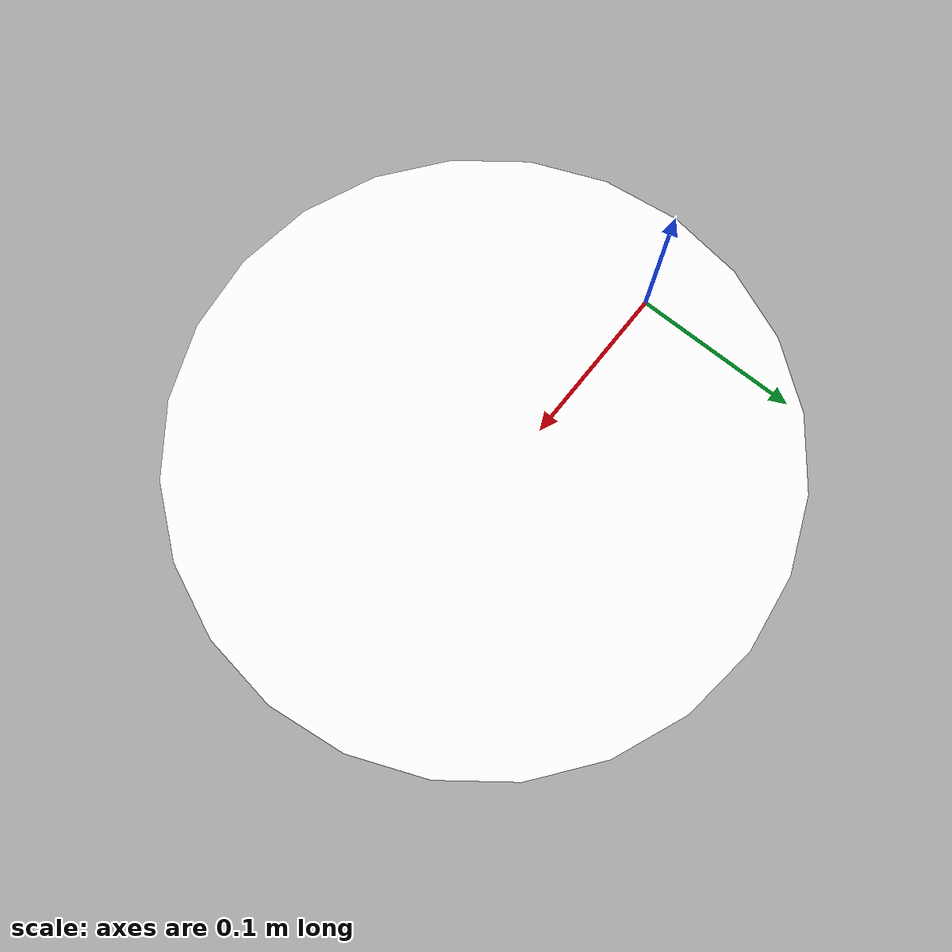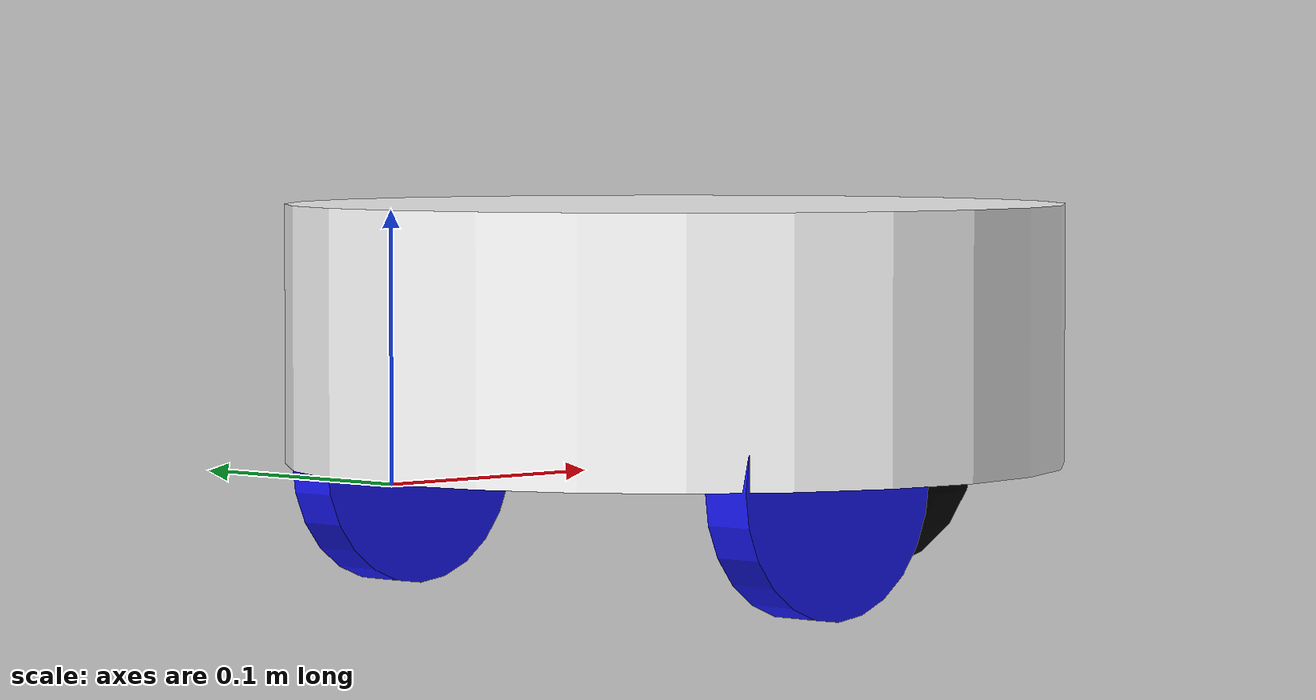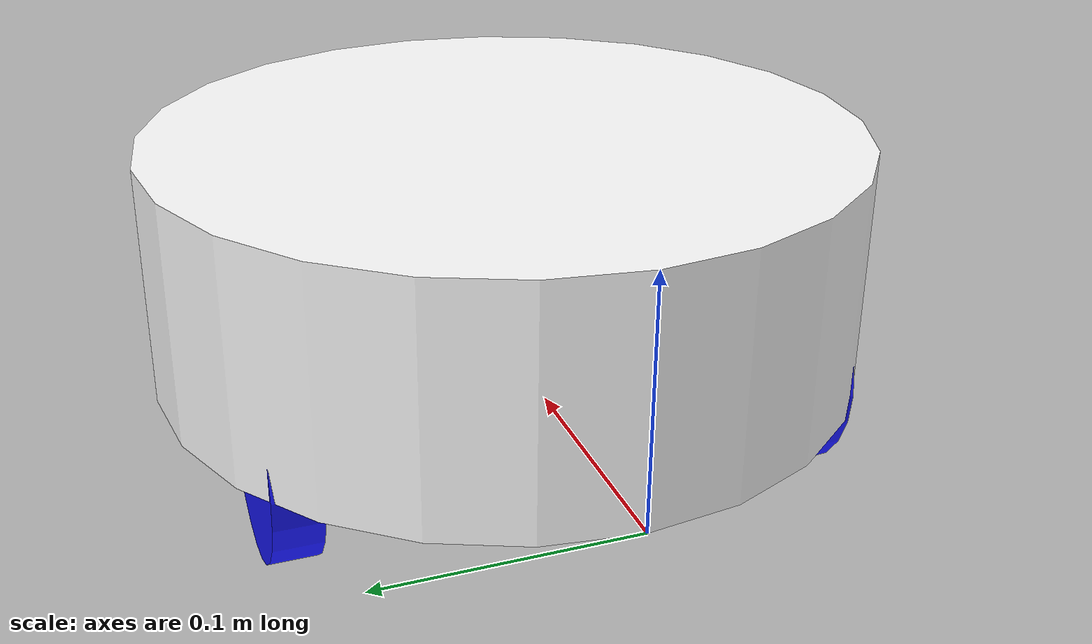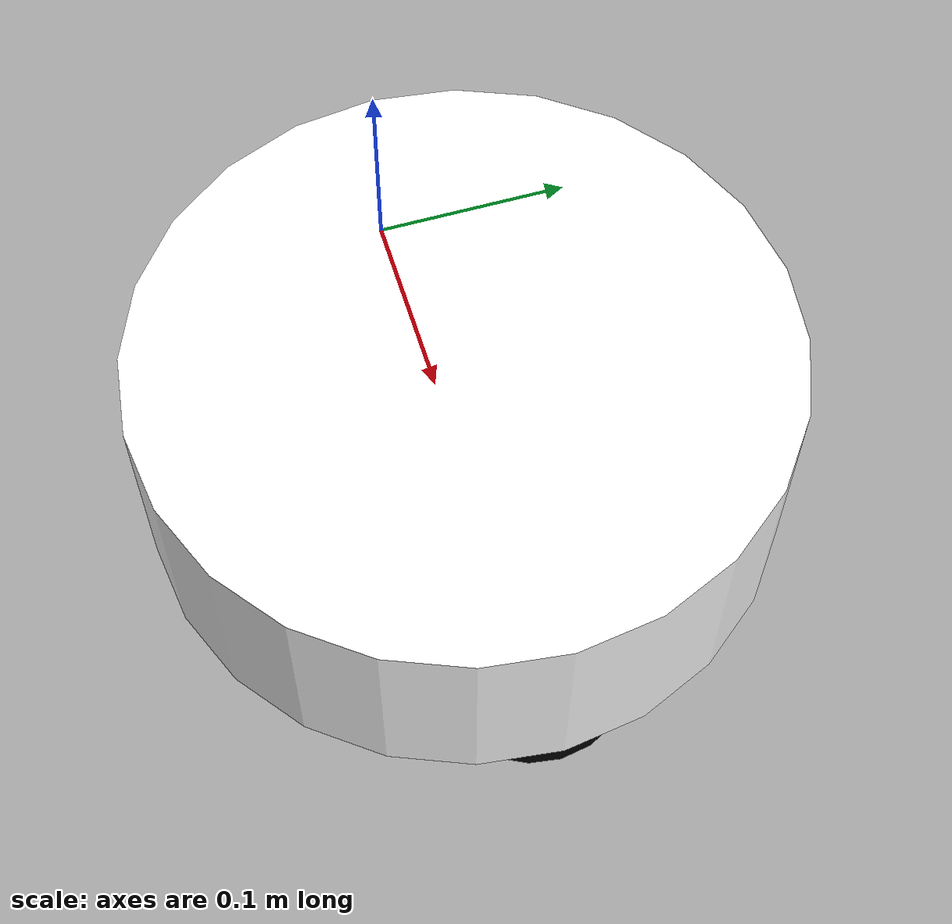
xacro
<?xml version="1.0"?>
<robot xmlns:xacro="http://www.ros.org/wiki/xacro">

    <xacro:include filename="inertial_macros.xacro" />
    <material name="white">
        <color rgba="1 1 1 1"/>
    </material>

    <material name="orange">
        <color rgba="1 0.3 0.1 1"/>
    </material>

    <material name="blue">
        <color rgba="0.1 0.1 1 1"/>
    </material>

    <material name="black">
        <color rgba="0 0 0 1"/>
    </material>

    <material name="red">
        <color rgba="1 0 0 1"/>
    </material>

    <!--BASE LINK-->

    <link name="base_link">

    </link>

    <!--CHASSIS LINK-->

    <link name="chassis">
        <visual>
            <origin xyz="0 0 0.05"/>
            <geometry>
                <cylinder radius="0.15" length="0.1"/>
            </geometry>
            <material name="white"/>
        </visual>
        <collision>
            <origin xyz="0 0 0.05"/>
            <geometry>
                <cylinder radius="0.15" length="0.1"/>
            </geometry>
        </collision>
        <xacro:inertial_cylinder mass="5" radius="0.15" length="0.1">
            <origin xyz="0 0 0.05" rpy="0 0 0"/>
        </xacro:inertial_cylinder>
    </link>
    <gazebo reference="chassis">
        <material>Gazebo/White</material>
    </gazebo>

    <joint name="chassis_joint" type="fixed">
        <parent link="base_link"/>
        <child link="chassis"/>
        <origin xyz="0.15 0 0"/>
    </joint>

    <!--LEFT WHEEL LINK-->

<joint name="left_wheel_joint" type="continuous">
    <parent link="base_link"/>
    <child link="left_wheel"/>
    <origin xyz="0.11 0.11 0" rpy="-${pi/2} 0 0"/>ros2 run teleop_twist_keyboard teleop_twist_keyboard
    <axis xyz="0 0 1"/>
</joint>
<link name="left_wheel">
    <visual>
        <geometry>
            <cylinder length="0.02" radius="0.05" />
        </geometry>
        <material name="blue"/>
    </visual>
    <collision>
        <geometry>
            <cylinder length="0.02" radius="0.05" />
        </geometry>
    </collision>
    <xacro:inertial_cylinder mass="0.05" length="0.02" radius="0.05">
        <origin xyz="0 0 0" rpy="0 0 0"/>
    </xacro:inertial_cylinder>

</link>
<gazebo reference="left_wheel">
    <material>Gazebo/Blue</material>
</gazebo>

     <!-- RIGHT WHEEL -->

<joint name="right_wheel_joint" type="continuous">
    <parent link="base_link"/>
    <child link="right_wheel"/>
    <origin xyz="0.11 -0.11 0" rpy="${pi/2} 0 0"/>
    <axis xyz="0 0 -1"/>
</joint>
<link name="right_wheel">
    <visual>
        <geometry>
            <cylinder length="0.02" radius="0.05" />
        </geometry>
        <material name="blue"/>
    </visual>
    <collision>
        <geometry>
            <cylinder length="0.02" radius="0.05" />
        </geometry>
    </collision>
     <xacro:inertial_cylinder mass="0.05" length="0.02" radius="0.05">
        <origin xyz="0 0 0" rpy="0 0 0"/>
    </xacro:inertial_cylinder>

</link>
<gazebo reference="right_wheel">
    <material>Gazebo/Blue</material>
</gazebo>

   <!-- CASTER WHEEL -->

<joint name="caster_wheel_joint" type="fixed">
    <parent link="chassis"/>
    <child link="caster_wheel"/>
    <origin xyz="0.1 0 0" rpy="0 0 0"/>
</joint>
<link name="caster_wheel">
    <visual>
        <geometry>
            <sphere radius="0.05" />
        </geometry>
        <material name="black"/>
    </visual>
    <collision>
        <geometry>
            <sphere radius="0.05" />
        </geometry>
    </collision>
    <xacro:inertial_sphere mass="0.04" radius="0.05">
        <origin xyz="0 0 0" rpy="0 0 0"/>
    </xacro:inertial_sphere>
</link>
<gazebo reference="caster_wheel">
    <material>Gazebo/Black</material>
    <mu1 value="0.001"/>
    <mu2 value="0.001"/>
</gazebo>
</robot>
